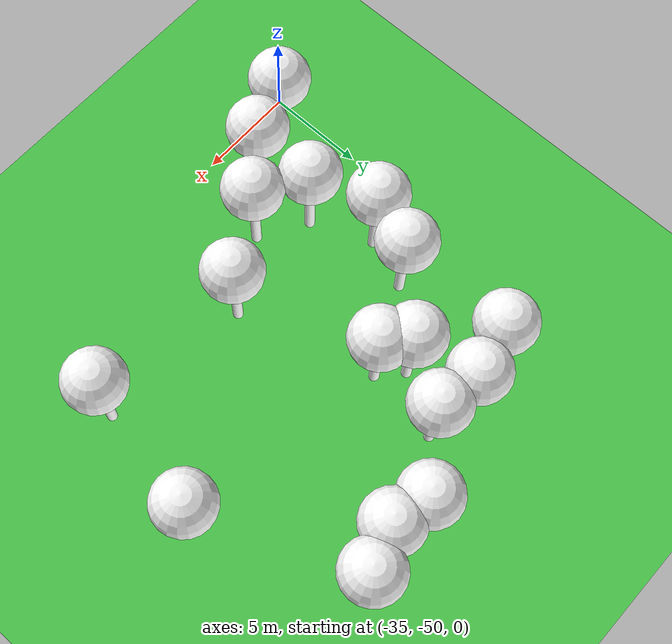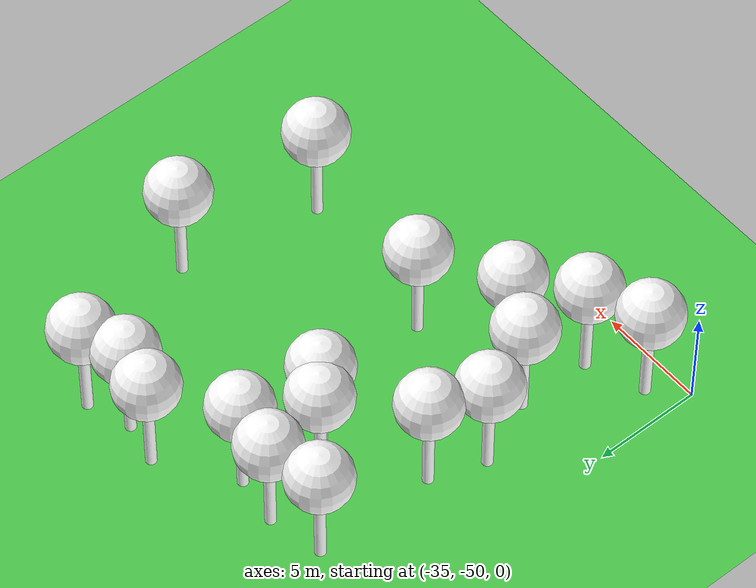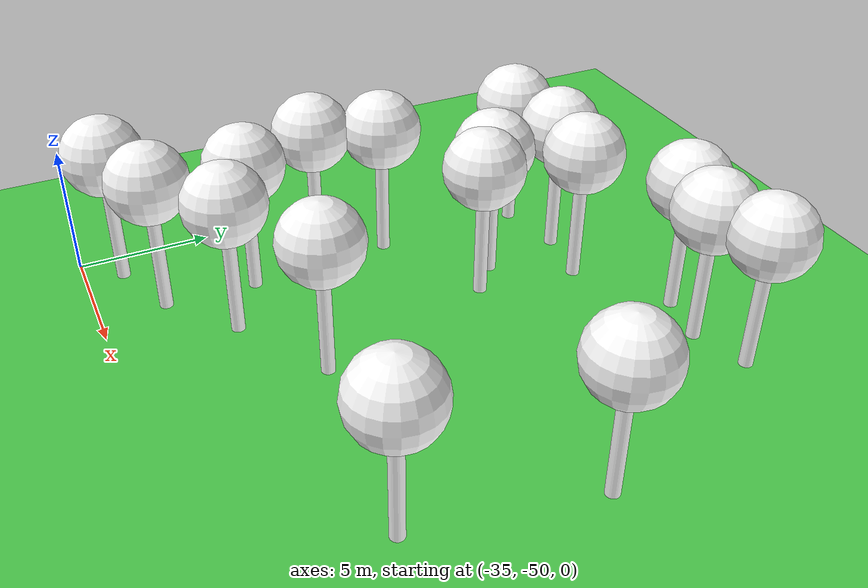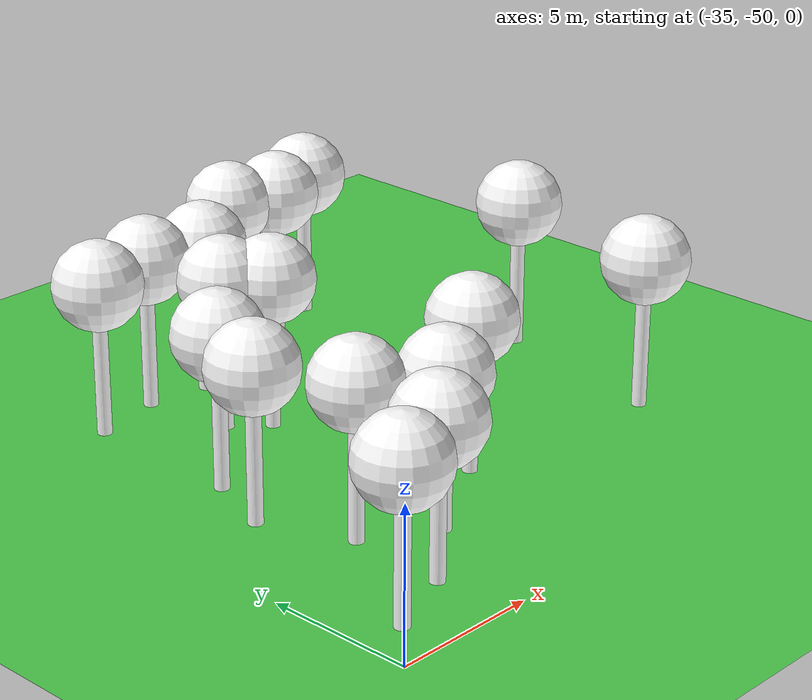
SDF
<sdf version="1.8">
 <world name="forest_world">
  <model name="tree_simple433">
   <static>1</static>
   <link name="link">
    <pose>0 0 0.1 0 -0 0</pose>
    <collision name="collision_trunk">
     <pose>0 0 2 0 -0 0</pose>
     <geometry><cylinder><radius>0.25</radius><length>4</length></cylinder></geometry>
    </collision>
    <collision name="collision_treetop">
     <pose>0 0 5.2 0 -0 0</pose>
     <geometry><sphere><radius>1.5</radius></sphere></geometry>
    </collision>
    <visual name="trunk_433">
     <pose>0 0 2 0 -0 0</pose>
     <geometry><cylinder><radius>0.25</radius><length>4</length></cylinder></geometry>
     <material>
      <ambient>0.5 0.5 0.5 1</ambient>
      <diffuse>1.0 1.0 1.0 1</diffuse>
      <specular>0.0 0.0 0.0 1</specular>
      <pbr>
       <metal>
        <albedo_map>file://textures/tree_simple_trunk.jpg</albedo_map>
        <metalness>0.0</metalness>
        <roughness>0.8</roughness>
       </metal>
      </pbr>
     </material>
    </visual>
    <visual name="treetop_433">
     <pose>0 0 5.2 0 -0 0</pose>
     <geometry><sphere><radius>1.5</radius></sphere></geometry>
     <material>
      <ambient>0.5 0.5 0.5 1</ambient>
      <diffuse>1.0 1.0 1.0 1</diffuse>
      <specular>0.0 0.0 0.0 1</specular>
      <pbr>
       <metal>
        <albedo_map>file://textures/tree_simple_treetop.jpg</albedo_map>
        <metalness>0.0</metalness>
        <roughness>0.9</roughness>
       </metal>
      </pbr>
     </material>
    </visual>
   </link>
   <pose>-27.0163612707 -36.6075625798 0 0 -0 0</pose>
  </model>
  <model name="tree_simple416">
   <static>1</static>
   <link name="link">
    <pose>0 0 0.1 0 -0 0</pose>
    <collision name="collision_trunk">
     <pose>0 0 2 0 -0 0</pose>
     <geometry><cylinder><radius>0.25</radius><length>4</length></cylinder></geometry>
    </collision>
    <collision name="collision_treetop">
     <pose>0 0 5.2 0 -0 0</pose>
     <geometry><sphere><radius>1.5</radius></sphere></geometry>
    </collision>
    <visual name="trunk_416">
     <pose>0 0 2 0 -0 0</pose>
     <geometry><cylinder><radius>0.25</radius><length>4</length></cylinder></geometry>
     <material>
      <ambient>0.5 0.5 0.5 1</ambient>
      <diffuse>1.0 1.0 1.0 1</diffuse>
      <specular>0.0 0.0 0.0 1</specular>
      <pbr>
       <metal>
        <albedo_map>file://textures/tree_simple_trunk.jpg</albedo_map>
        <metalness>0.0</metalness>
        <roughness>0.8</roughness>
       </metal>
      </pbr>
     </material>
    </visual>
    <visual name="treetop_416">
     <pose>0 0 5.2 0 -0 0</pose>
     <geometry><sphere><radius>1.5</radius></sphere></geometry>
     <material>
      <ambient>0.5 0.5 0.5 1</ambient>
      <diffuse>1.0 1.0 1.0 1</diffuse>
      <specular>0.0 0.0 0.0 1</specular>
      <pbr>
       <metal>
        <albedo_map>file://textures/tree_simple_treetop.jpg</albedo_map>
        <metalness>0.0</metalness>
        <roughness>0.9</roughness>
       </metal>
      </pbr>
     </material>
    </visual>
   </link>
   <pose>-31.2795871631 -38.7286210433 0 0 -0 0</pose>
  </model>
  <model name="tree_simple411">
   <static>1</static>
   <link name="link">
    <pose>0 0 0.1 0 -0 0</pose>
    <collision name="collision_trunk">
     <pose>0 0 2 0 -0 0</pose>
     <geometry><cylinder><radius>0.25</radius><length>4</length></cylinder></geometry>
    </collision>
    <collision name="collision_treetop">
     <pose>0 0 5.2 0 -0 0</pose>
     <geometry><sphere><radius>1.5</radius></sphere></geometry>
    </collision>
    <visual name="trunk_411">
     <pose>0 0 2 0 -0 0</pose>
     <geometry><cylinder><radius>0.25</radius><length>4</length></cylinder></geometry>
     <material>
      <ambient>0.5 0.5 0.5 1</ambient>
      <diffuse>1.0 1.0 1.0 1</diffuse>
      <specular>0.0 0.0 0.0 1</specular>
      <pbr>
       <metal>
        <albedo_map>file://textures/tree_simple_trunk.jpg</albedo_map>
        <metalness>0.0</metalness>
        <roughness>0.8</roughness>
       </metal>
      </pbr>
     </material>
    </visual>
    <visual name="treetop_411">
     <pose>0 0 5.2 0 -0 0</pose>
     <geometry><sphere><radius>1.5</radius></sphere></geometry>
     <material>
      <ambient>0.5 0.5 0.5 1</ambient>
      <diffuse>1.0 1.0 1.0 1</diffuse>
      <specular>0.0 0.0 0.0 1</specular>
      <pbr>
       <metal>
        <albedo_map>file://textures/tree_simple_treetop.jpg</albedo_map>
        <metalness>0.0</metalness>
        <roughness>0.9</roughness>
       </metal>
      </pbr>
     </material>
    </visual>
   </link>
   <pose>-32.1703266052 -41.1753069034 0 0 -0 0</pose>
  </model>
  <model name="tree_simple407">
   <static>1</static>
   <link name="link">
    <pose>0 0 0.1 0 -0 0</pose>
    <collision name="collision_trunk">
     <pose>0 0 2 0 -0 0</pose>
     <geometry><cylinder><radius>0.25</radius><length>4</length></cylinder></geometry>
    </collision>
    <collision name="collision_treetop">
     <pose>0 0 5.2 0 -0 0</pose>
     <geometry><sphere><radius>1.5</radius></sphere></geometry>
    </collision>
    <visual name="trunk_407">
     <pose>0 0 2 0 -0 0</pose>
     <geometry><cylinder><radius>0.25</radius><length>4</length></cylinder></geometry>
     <material>
      <ambient>0.5 0.5 0.5 1</ambient>
      <diffuse>1.0 1.0 1.0 1</diffuse>
      <specular>0.0 0.0 0.0 1</specular>
      <pbr>
       <metal>
        <albedo_map>file://textures/tree_simple_trunk.jpg</albedo_map>
        <metalness>0.0</metalness>
        <roughness>0.8</roughness>
       </metal>
      </pbr>
     </material>
    </visual>
    <visual name="treetop_407">
     <pose>0 0 5.2 0 -0 0</pose>
     <geometry><sphere><radius>1.5</radius></sphere></geometry>
     <material>
      <ambient>0.5 0.5 0.5 1</ambient>
      <diffuse>1.0 1.0 1.0 1</diffuse>
      <specular>0.0 0.0 0.0 1</specular>
      <pbr>
       <metal>
        <albedo_map>file://textures/tree_simple_treetop.jpg</albedo_map>
        <metalness>0.0</metalness>
        <roughness>0.9</roughness>
       </metal>
      </pbr>
     </material>
    </visual>
   </link>
   <pose>-31.2268758756 -33.0617209784 0 0 -0 0</pose>
  </model>
  <model name="tree_simple357">
   <static>1</static>
   <link name="link">
    <pose>0 0 0.1 0 -0 0</pose>
    <collision name="collision_trunk">
     <pose>0 0 2 0 -0 0</pose>
     <geometry><cylinder><radius>0.25</radius><length>4</length></cylinder></geometry>
    </collision>
    <collision name="collision_treetop">
     <pose>0 0 5.2 0 -0 0</pose>
     <geometry><sphere><radius>1.5</radius></sphere></geometry>
    </collision>
    <visual name="trunk_357">
     <pose>0 0 2 0 -0 0</pose>
     <geometry><cylinder><radius>0.25</radius><length>4</length></cylinder></geometry>
     <material>
      <ambient>0.5 0.5 0.5 1</ambient>
      <diffuse>1.0 1.0 1.0 1</diffuse>
      <specular>0.0 0.0 0.0 1</specular>
      <pbr>
       <metal>
        <albedo_map>file://textures/tree_simple_trunk.jpg</albedo_map>
        <metalness>0.0</metalness>
        <roughness>0.8</roughness>
       </metal>
      </pbr>
     </material>
    </visual>
    <visual name="treetop_357">
     <pose>0 0 5.2 0 -0 0</pose>
     <geometry><sphere><radius>1.5</radius></sphere></geometry>
     <material>
      <ambient>0.5 0.5 0.5 1</ambient>
      <diffuse>1.0 1.0 1.0 1</diffuse>
      <specular>0.0 0.0 0.0 1</specular>
      <pbr>
       <metal>
        <albedo_map>file://textures/tree_simple_treetop.jpg</albedo_map>
        <metalness>0.0</metalness>
        <roughness>0.9</roughness>
       </metal>
      </pbr>
     </material>
    </visual>
   </link>
   <pose>-28.5404779553 -45.5660911112 0 0 -0 0</pose>
  </model>
  <model name="tree_simple348">
   <static>1</static>
   <link name="link">
    <pose>0 0 0.1 0 -0 0</pose>
    <collision name="collision_trunk">
     <pose>0 0 2 0 -0 0</pose>
     <geometry><cylinder><radius>0.25</radius><length>4</length></cylinder></geometry>
    </collision>
    <collision name="collision_treetop">
     <pose>0 0 5.2 0 -0 0</pose>
     <geometry><sphere><radius>1.5</radius></sphere></geometry>
    </collision>
    <visual name="trunk_348">
     <pose>0 0 2 0 -0 0</pose>
     <geometry><cylinder><radius>0.25</radius><length>4</length></cylinder></geometry>
     <material>
      <ambient>0.5 0.5 0.5 1</ambient>
      <diffuse>1.0 1.0 1.0 1</diffuse>
      <specular>0.0 0.0 0.0 1</specular>
      <pbr>
       <metal>
        <albedo_map>file://textures/tree_simple_trunk.jpg</albedo_map>
        <metalness>0.0</metalness>
        <roughness>0.8</roughness>
       </metal>
      </pbr>
     </material>
    </visual>
    <visual name="treetop_348">
     <pose>0 0 5.2 0 -0 0</pose>
     <geometry><sphere><radius>1.5</radius></sphere></geometry>
     <material>
      <ambient>0.5 0.5 0.5 1</ambient>
      <diffuse>1.0 1.0 1.0 1</diffuse>
      <specular>0.0 0.0 0.0 1</specular>
      <pbr>
       <metal>
        <albedo_map>file://textures/tree_simple_treetop.jpg</albedo_map>
        <metalness>0.0</metalness>
        <roughness>0.9</roughness>
       </metal>
      </pbr>
     </material>
    </visual>
   </link>
   <pose>-31.0103174471 -47.5688671712 0 0 -0 0</pose>
  </model>
  <model name="tree_simple305">
   <static>1</static>
   <link name="link">
    <pose>0 0 0.1 0 -0 0</pose>
    <collision name="collision_trunk">
     <pose>0 0 2 0 -0 0</pose>
     <geometry><cylinder><radius>0.25</radius><length>4</length></cylinder></geometry>
    </collision>
    <collision name="collision_treetop">
     <pose>0 0 5.2 0 -0 0</pose>
     <geometry><sphere><radius>1.5</radius></sphere></geometry>
    </collision>
    <visual name="trunk_305">
     <pose>0 0 2 0 -0 0</pose>
     <geometry><cylinder><radius>0.25</radius><length>4</length></cylinder></geometry>
     <material>
      <ambient>0.5 0.5 0.5 1</ambient>
      <diffuse>1.0 1.0 1.0 1</diffuse>
      <specular>0.0 0.0 0.0 1</specular>
      <pbr>
       <metal>
        <albedo_map>file://textures/tree_simple_trunk.jpg</albedo_map>
        <metalness>0.0</metalness>
        <roughness>0.8</roughness>
       </metal>
      </pbr>
     </material>
    </visual>
    <visual name="treetop_305">
     <pose>0 0 5.2 0 -0 0</pose>
     <geometry><sphere><radius>1.5</radius></sphere></geometry>
     <material>
      <ambient>0.5 0.5 0.5 1</ambient>
      <diffuse>1.0 1.0 1.0 1</diffuse>
      <specular>0.0 0.0 0.0 1</specular>
      <pbr>
       <metal>
        <albedo_map>file://textures/tree_simple_treetop.jpg</albedo_map>
        <metalness>0.0</metalness>
        <roughness>0.9</roughness>
       </metal>
      </pbr>
     </material>
    </visual>
   </link>
   <pose>-16.2250054706 -37.82270562 0 0 -0 0</pose>
  </model>
  <model name="tree_simple262">
   <static>1</static>
   <link name="link">
    <pose>0 0 0.1 0 -0 0</pose>
    <collision name="collision_trunk">
     <pose>0 0 2 0 -0 0</pose>
     <geometry><cylinder><radius>0.25</radius><length>4</length></cylinder></geometry>
    </collision>
    <collision name="collision_treetop">
     <pose>0 0 5.2 0 -0 0</pose>
     <geometry><sphere><radius>1.5</radius></sphere></geometry>
    </collision>
    <visual name="trunk_262">
     <pose>0 0 2 0 -0 0</pose>
     <geometry><cylinder><radius>0.25</radius><length>4</length></cylinder></geometry>
     <material>
      <ambient>0.5 0.5 0.5 1</ambient>
      <diffuse>1.0 1.0 1.0 1</diffuse>
      <specular>0.0 0.0 0.0 1</specular>
      <pbr>
       <metal>
        <albedo_map>file://textures/tree_simple_trunk.jpg</albedo_map>
        <metalness>0.0</metalness>
        <roughness>0.8</roughness>
       </metal>
      </pbr>
     </material>
    </visual>
    <visual name="treetop_262">
     <pose>0 0 5.2 0 -0 0</pose>
     <geometry><sphere><radius>1.5</radius></sphere></geometry>
     <material>
      <ambient>0.5 0.5 0.5 1</ambient>
      <diffuse>1.0 1.0 1.0 1</diffuse>
      <specular>0.0 0.0 0.0 1</specular>
      <pbr>
       <metal>
        <albedo_map>file://textures/tree_simple_treetop.jpg</albedo_map>
        <metalness>0.0</metalness>
        <roughness>0.9</roughness>
       </metal>
      </pbr>
     </material>
    </visual>
   </link>
   <pose>-23.2560890967 -30.6191265847 0 0 -0 0</pose>
  </model>
  <model name="tree_simple257">
   <static>1</static>
   <link name="link">
    <pose>0 0 0.1 0 -0 0</pose>
    <collision name="collision_trunk">
     <pose>0 0 2 0 -0 0</pose>
     <geometry><cylinder><radius>0.25</radius><length>4</length></cylinder></geometry>
    </collision>
    <collision name="collision_treetop">
     <pose>0 0 5.2 0 -0 0</pose>
     <geometry><sphere><radius>1.5</radius></sphere></geometry>
    </collision>
    <visual name="trunk_257">
     <pose>0 0 2 0 -0 0</pose>
     <geometry><cylinder><radius>0.25</radius><length>4</length></cylinder></geometry>
     <material>
      <ambient>0.5 0.5 0.5 1</ambient>
      <diffuse>1.0 1.0 1.0 1</diffuse>
      <specular>0.0 0.0 0.0 1</specular>
      <pbr>
       <metal>
        <albedo_map>file://textures/tree_simple_trunk.jpg</albedo_map>
        <metalness>0.0</metalness>
        <roughness>0.8</roughness>
       </metal>
      </pbr>
     </material>
    </visual>
    <visual name="treetop_257">
     <pose>0 0 5.2 0 -0 0</pose>
     <geometry><sphere><radius>1.5</radius></sphere></geometry>
     <material>
      <ambient>0.5 0.5 0.5 1</ambient>
      <diffuse>1.0 1.0 1.0 1</diffuse>
      <specular>0.0 0.0 0.0 1</specular>
      <pbr>
       <metal>
        <albedo_map>file://textures/tree_simple_treetop.jpg</albedo_map>
        <metalness>0.0</metalness>
        <roughness>0.9</roughness>
       </metal>
      </pbr>
     </material>
    </visual>
   </link>
   <pose>-17.4076670765 -44.276485645 0 0 -0 0</pose>
  </model>
  <model name="tree_simple250">
   <static>1</static>
   <link name="link">
    <pose>0 0 0.1 0 -0 0</pose>
    <collision name="collision_trunk">
     <pose>0 0 2 0 -0 0</pose>
     <geometry><cylinder><radius>0.25</radius><length>4</length></cylinder></geometry>
    </collision>
    <collision name="collision_treetop">
     <pose>0 0 5.2 0 -0 0</pose>
     <geometry><sphere><radius>1.5</radius></sphere></geometry>
    </collision>
    <visual name="trunk_250">
     <pose>0 0 2 0 -0 0</pose>
     <geometry><cylinder><radius>0.25</radius><length>4</length></cylinder></geometry>
     <material>
      <ambient>0.5 0.5 0.5 1</ambient>
      <diffuse>1.0 1.0 1.0 1</diffuse>
      <specular>0.0 0.0 0.0 1</specular>
      <pbr>
       <metal>
        <albedo_map>file://textures/tree_simple_trunk.jpg</albedo_map>
        <metalness>0.0</metalness>
        <roughness>0.8</roughness>
       </metal>
      </pbr>
     </material>
    </visual>
    <visual name="treetop_250">
     <pose>0 0 5.2 0 -0 0</pose>
     <geometry><sphere><radius>1.5</radius></sphere></geometry>
     <material>
      <ambient>0.5 0.5 0.5 1</ambient>
      <diffuse>1.0 1.0 1.0 1</diffuse>
      <specular>0.0 0.0 0.0 1</specular>
      <pbr>
       <metal>
        <albedo_map>file://textures/tree_simple_treetop.jpg</albedo_map>
        <metalness>0.0</metalness>
        <roughness>0.9</roughness>
       </metal>
      </pbr>
     </material>
    </visual>
   </link>
   <pose>-33.6030138898 -48.597626204 0 0 -0 0</pose>
  </model>
  <model name="tree_simple198">
   <static>1</static>
   <link name="link">
    <pose>0 0 0.1 0 -0 0</pose>
    <collision name="collision_trunk">
     <pose>0 0 2 0 -0 0</pose>
     <geometry><cylinder><radius>0.25</radius><length>4</length></cylinder></geometry>
    </collision>
    <collision name="collision_treetop">
     <pose>0 0 5.2 0 -0 0</pose>
     <geometry><sphere><radius>1.5</radius></sphere></geometry>
    </collision>
    <visual name="trunk_198">
     <pose>0 0 2 0 -0 0</pose>
     <geometry><cylinder><radius>0.25</radius><length>4</length></cylinder></geometry>
     <material>
      <ambient>0.5 0.5 0.5 1</ambient>
      <diffuse>1.0 1.0 1.0 1</diffuse>
      <specular>0.0 0.0 0.0 1</specular>
      <pbr>
       <metal>
        <albedo_map>file://textures/tree_simple_trunk.jpg</albedo_map>
        <metalness>0.0</metalness>
        <roughness>0.8</roughness>
       </metal>
      </pbr>
     </material>
    </visual>
    <visual name="treetop_198">
     <pose>0 0 5.2 0 -0 0</pose>
     <geometry><sphere><radius>1.5</radius></sphere></geometry>
     <material>
      <ambient>0.5 0.5 0.5 1</ambient>
      <diffuse>1.0 1.0 1.0 1</diffuse>
      <specular>0.0 0.0 0.0 1</specular>
      <pbr>
       <metal>
        <albedo_map>file://textures/tree_simple_treetop.jpg</albedo_map>
        <metalness>0.0</metalness>
        <roughness>0.9</roughness>
       </metal>
      </pbr>
     </material>
    </visual>
   </link>
   <pose>-28.1666068892 -35.6025820701 0 0 -0 0</pose>
  </model>
  <model name="tree_simple166">
   <static>1</static>
   <link name="link">
    <pose>0 0 0.1 0 -0 0</pose>
    <collision name="collision_trunk">
     <pose>0 0 2 0 -0 0</pose>
     <geometry><cylinder><radius>0.25</radius><length>4</length></cylinder></geometry>
    </collision>
    <collision name="collision_treetop">
     <pose>0 0 5.2 0 -0 0</pose>
     <geometry><sphere><radius>1.5</radius></sphere></geometry>
    </collision>
    <visual name="trunk_166">
     <pose>0 0 2 0 -0 0</pose>
     <geometry><cylinder><radius>0.25</radius><length>4</length></cylinder></geometry>
     <material>
      <ambient>0.5 0.5 0.5 1</ambient>
      <diffuse>1.0 1.0 1.0 1</diffuse>
      <specular>0.0 0.0 0.0 1</specular>
      <pbr>
       <metal>
        <albedo_map>file://textures/tree_simple_trunk.jpg</albedo_map>
        <metalness>0.0</metalness>
        <roughness>0.8</roughness>
       </metal>
      </pbr>
     </material>
    </visual>
    <visual name="treetop_166">
     <pose>0 0 5.2 0 -0 0</pose>
     <geometry><sphere><radius>1.5</radius></sphere></geometry>
     <material>
      <ambient>0.5 0.5 0.5 1</ambient>
      <diffuse>1.0 1.0 1.0 1</diffuse>
      <specular>0.0 0.0 0.0 1</specular>
      <pbr>
       <metal>
        <albedo_map>file://textures/tree_simple_treetop.jpg</albedo_map>
        <metalness>0.0</metalness>
        <roughness>0.9</roughness>
       </metal>
      </pbr>
     </material>
    </visual>
   </link>
   <pose>-19.3381588268 -30.3399867983 0 0 -0 0</pose>
  </model>
  <model name="tree_simple71">
   <static>1</static>
   <link name="link">
    <pose>0 0 0.1 0 -0 0</pose>
    <collision name="collision_trunk">
     <pose>0 0 2 0 -0 0</pose>
     <geometry><cylinder><radius>0.25</radius><length>4</length></cylinder></geometry>
    </collision>
    <collision name="collision_treetop">
     <pose>0 0 5.2 0 -0 0</pose>
     <geometry><sphere><radius>1.5</radius></sphere></geometry>
    </collision>
    <visual name="trunk_71">
     <pose>0 0 2 0 -0 0</pose>
     <geometry><cylinder><radius>0.25</radius><length>4</length></cylinder></geometry>
     <material>
      <ambient>0.5 0.5 0.5 1</ambient>
      <diffuse>1.0 1.0 1.0 1</diffuse>
      <specular>0.0 0.0 0.0 1</specular>
      <pbr>
       <metal>
        <albedo_map>file://textures/tree_simple_trunk.jpg</albedo_map>
        <metalness>0.0</metalness>
        <roughness>0.8</roughness>
       </metal>
      </pbr>
     </material>
    </visual>
    <visual name="treetop_71">
     <pose>0 0 5.2 0 -0 0</pose>
     <geometry><sphere><radius>1.5</radius></sphere></geometry>
     <material>
      <ambient>0.5 0.5 0.5 1</ambient>
      <diffuse>1.0 1.0 1.0 1</diffuse>
      <specular>0.0 0.0 0.0 1</specular>
      <pbr>
       <metal>
        <albedo_map>file://textures/tree_simple_treetop.jpg</albedo_map>
        <metalness>0.0</metalness>
        <roughness>0.9</roughness>
       </metal>
      </pbr>
     </material>
    </visual>
   </link>
   <pose>-30.8835620434 -44.1797881367 0 0 -0 0</pose>
  </model>
  <model name="tree_simple35">
   <static>1</static>
   <link name="link">
    <pose>0 0 0.1 0 -0 0</pose>
    <collision name="collision_trunk">
     <pose>0 0 2 0 -0 0</pose>
     <geometry><cylinder><radius>0.25</radius><length>4</length></cylinder></geometry>
    </collision>
    <collision name="collision_treetop">
     <pose>0 0 5.2 0 -0 0</pose>
     <geometry><sphere><radius>1.5</radius></sphere></geometry>
    </collision>
    <visual name="trunk_35">
     <pose>0 0 2 0 -0 0</pose>
     <geometry><cylinder><radius>0.25</radius><length>4</length></cylinder></geometry>
     <material>
      <ambient>0.5 0.5 0.5 1</ambient>
      <diffuse>1.0 1.0 1.0 1</diffuse>
      <specular>0.0 0.0 0.0 1</specular>
      <pbr>
       <metal>
        <albedo_map>file://textures/tree_simple_trunk.jpg</albedo_map>
        <metalness>0.0</metalness>
        <roughness>0.8</roughness>
       </metal>
      </pbr>
     </material>
    </visual>
    <visual name="treetop_35">
     <pose>0 0 5.2 0 -0 0</pose>
     <geometry><sphere><radius>1.5</radius></sphere></geometry>
     <material>
      <ambient>0.5 0.5 0.5 1</ambient>
      <diffuse>1.0 1.0 1.0 1</diffuse>
      <specular>0.0 0.0 0.0 1</specular>
      <pbr>
       <metal>
        <albedo_map>file://textures/tree_simple_treetop.jpg</albedo_map>
        <metalness>0.0</metalness>
        <roughness>0.9</roughness>
       </metal>
      </pbr>
     </material>
    </visual>
   </link>
   <pose>-26.5218868534 -32.8279754305 0 0 -0 0</pose>
  </model>
  <model name="tree_simple27">
   <static>1</static>
   <link name="link">
    <pose>0 0 0.1 0 -0 0</pose>
    <collision name="collision_trunk">
     <pose>0 0 2 0 -0 0</pose>
     <geometry><cylinder><radius>0.25</radius><length>4</length></cylinder></geometry>
    </collision>
    <collision name="collision_treetop">
     <pose>0 0 5.2 0 -0 0</pose>
     <geometry><sphere><radius>1.5</radius></sphere></geometry>
    </collision>
    <visual name="trunk_27">
     <pose>0 0 2 0 -0 0</pose>
     <geometry><cylinder><radius>0.25</radius><length>4</length></cylinder></geometry>
     <material>
      <ambient>0.5 0.5 0.5 1</ambient>
      <diffuse>1.0 1.0 1.0 1</diffuse>
      <specular>0.0 0.0 0.0 1</specular>
      <pbr>
       <metal>
        <albedo_map>file://textures/tree_simple_trunk.jpg</albedo_map>
        <metalness>0.0</metalness>
        <roughness>0.8</roughness>
       </metal>
      </pbr>
     </material>
    </visual>
    <visual name="treetop_27">
     <pose>0 0 5.2 0 -0 0</pose>
     <geometry><sphere><radius>1.5</radius></sphere></geometry>
     <material>
      <ambient>0.5 0.5 0.5 1</ambient>
      <diffuse>1.0 1.0 1.0 1</diffuse>
      <specular>0.0 0.0 0.0 1</specular>
      <pbr>
       <metal>
        <albedo_map>file://textures/tree_simple_treetop.jpg</albedo_map>
        <metalness>0.0</metalness>
        <roughness>0.9</roughness>
       </metal>
      </pbr>
     </material>
    </visual>
   </link>
   <pose>-28.7263520245 -32.4988311651 0 0 -0 0</pose>
  </model>
  <model name="tree_simple26">
   <static>1</static>
   <link name="link">
    <pose>0 0 0.1 0 -0 0</pose>
    <collision name="collision_trunk">
     <pose>0 0 2 0 -0 0</pose>
     <geometry><cylinder><radius>0.25</radius><length>4</length></cylinder></geometry>
    </collision>
    <collision name="collision_treetop">
     <pose>0 0 5.2 0 -0 0</pose>
     <geometry><sphere><radius>1.5</radius></sphere></geometry>
    </collision>
    <visual name="trunk_26">
     <pose>0 0 2 0 -0 0</pose>
     <geometry><cylinder><radius>0.25</radius><length>4</length></cylinder></geometry>
     <material>
      <ambient>0.5 0.5 0.5 1</ambient>
      <diffuse>1.0 1.0 1.0 1</diffuse>
      <specular>0.0 0.0 0.0 1</specular>
      <pbr>
       <metal>
        <albedo_map>file://textures/tree_simple_trunk.jpg</albedo_map>
        <metalness>0.0</metalness>
        <roughness>0.8</roughness>
       </metal>
      </pbr>
     </material>
    </visual>
    <visual name="treetop_26">
     <pose>0 0 5.2 0 -0 0</pose>
     <geometry><sphere><radius>1.5</radius></sphere></geometry>
     <material>
      <ambient>0.5 0.5 0.5 1</ambient>
      <diffuse>1.0 1.0 1.0 1</diffuse>
      <specular>0.0 0.0 0.0 1</specular>
      <pbr>
       <metal>
        <albedo_map>file://textures/tree_simple_treetop.jpg</albedo_map>
        <metalness>0.0</metalness>
        <roughness>0.9</roughness>
       </metal>
      </pbr>
     </material>
    </visual>
   </link>
   <pose>-25.0091602232 -43.4680518984 0 0 -0 0</pose>
  </model>
  <model name="tree_simple0">
   <static>1</static>
   <link name="link">
    <pose>0 0 0.1 0 -0 0</pose>
    <collision name="collision_trunk">
     <pose>0 0 2 0 -0 0</pose>
     <geometry><cylinder><radius>0.25</radius><length>4</length></cylinder></geometry>
    </collision>
    <collision name="collision_treetop">
     <pose>0 0 5.2 0 -0 0</pose>
     <geometry><sphere><radius>1.5</radius></sphere></geometry>
    </collision>
    <visual name="trunk_0">
     <pose>0 0 2 0 -0 0</pose>
     <geometry><cylinder><radius>0.25</radius><length>4</length></cylinder></geometry>
     <material>
      <ambient>0.5 0.5 0.5 1</ambient>
      <diffuse>1.0 1.0 1.0 1</diffuse>
      <specular>0.0 0.0 0.0 1</specular>
      <pbr>
       <metal>
        <albedo_map>file://textures/tree_simple_trunk.jpg</albedo_map>
        <metalness>0.0</metalness>
        <roughness>0.8</roughness>
       </metal>
      </pbr>
     </material>
    </visual>
    <visual name="treetop_0">
     <pose>0 0 5.2 0 -0 0</pose>
     <geometry><sphere><radius>1.5</radius></sphere></geometry>
     <material>
      <ambient>0.5 0.5 0.5 1</ambient>
      <diffuse>1.0 1.0 1.0 1</diffuse>
      <specular>0.0 0.0 0.0 1</specular>
      <pbr>
       <metal>
        <albedo_map>file://textures/tree_simple_treetop.jpg</albedo_map>
        <metalness>0.0</metalness>
        <roughness>0.9</roughness>
       </metal>
      </pbr>
     </material>
    </visual>
   </link>
   <pose>-21.3714553001 -31.0269025129 0 0 -0 0</pose>
  </model>
  <model name="ground_plane">
   <static>true</static>
   <link name="link">
    <collision name="collision">
     <geometry><plane><normal>0 0 1</normal><size>250 250</size></plane></geometry>
     <surface><friction><ode><mu>1</mu><mu2>1</mu2></ode></friction></surface>
    </collision>
    <visual name="grass">
     <cast_shadows>false</cast_shadows>
     <geometry><mesh><uri>file://textures/grass_plane.dae</uri><scale>1 1 1</scale></mesh></geometry>
     <material>
      <ambient>0.2 0.6 0.2 1</ambient>
      <diffuse>0.3 0.8 0.3 1</diffuse>
      <specular>0.1 0.1 0.1 1</specular>
      <pbr>
       <metal>
        <albedo_map>file://textures/grass_seamless.jpg</albedo_map>
        <metalness>0.0</metalness>
        <roughness>0.9</roughness>
       </metal>
      </pbr>
     </material>
    </visual>
   </link>
  </model>
 </world>
</sdf>
